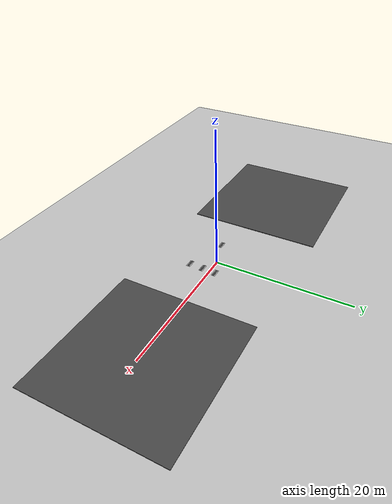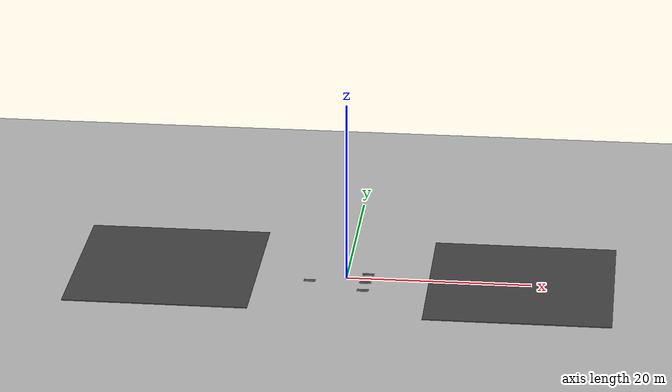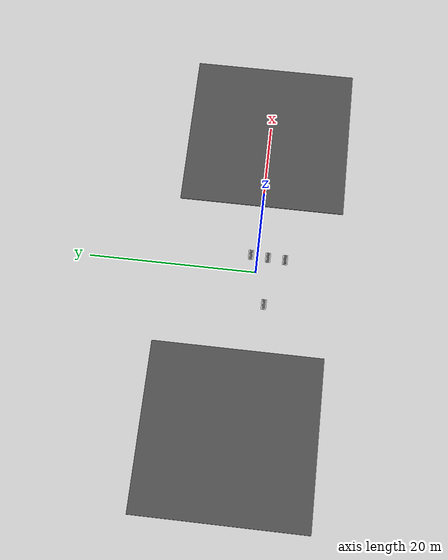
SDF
<sdf version="1.6">
 <world name="default">
  <model name="ground_plane">
   <static>1</static>
   <link name="link">
    <collision name="collision">
     <geometry><plane><normal>0 0 1</normal><size>100 100</size></plane></geometry>
     <surface><friction><ode><mu>100</mu><mu2>50</mu2></ode></friction></surface>
    </collision>
    <visual name="visual">
     <cast_shadows>0</cast_shadows>
     <geometry><plane><normal>0 0 1</normal><size>100 100</size></plane></geometry>
     <material>
      <script><uri>file://media/materials/scripts/gazebo.material</uri><name>Gazebo/Grey</name></script>
     </material>
    </visual>
   </link>
  </model>
  <model name="asphalt_plane">
   <static>1</static>
   <link name="link">
    <collision name="collision"><geometry><box><size>20 20 0.1</size></box></geometry></collision>
    <visual name="visual">
     <cast_shadows>0</cast_shadows>
     <geometry><box><size>20 20 0.1</size></box></geometry>
     <material>
      <script>
       <uri>model://asphalt_plane/materials/scripts</uri>
       <uri>model://asphalt_plane/materials/textures</uri>
       <name>vrc/asphalt</name>
      </script>
     </material>
    </visual>
   </link>
   <pose>18.9407 0.223118 0 0 -0 0</pose>
  </model>
  <model name="asphalt_plane_clone_0">
   <static>1</static>
   <link name="link">
    <collision name="collision"><geometry><box><size>20 20 0.1</size></box></geometry></collision>
    <visual name="visual">
     <cast_shadows>0</cast_shadows>
     <geometry><box><size>20 20 0.1</size></box></geometry>
     <material>
      <script>
       <uri>model://asphalt_plane/materials/scripts</uri>
       <uri>model://asphalt_plane/materials/textures</uri>
       <name>vrc/asphalt</name>
      </script>
     </material>
    </visual>
   </link>
   <pose>-19.8038 1.18618 0 0 -0 0</pose>
  </model>
  <model name="frc2016_roughterrain_clone_1">
   <static>1</static>
   <link name="link">
    <visual name="platform">
     <pose>0 0 0.08269 0 -0 0</pose>
     <geometry><box><size>1.27 0.5969 0.003175</size></box></geometry>
    </visual>
    <collision name="platform">
     <pose>0 0 0.08269 0 -0 0</pose>
     <geometry><box><size>1.27 0.5969 0.003175</size></box></geometry>
    </collision>
    <visual name="row1_block1_sm">
     <pose>0.51435 0.1143 0.09698 0 -0 0</pose>
     <geometry><box><size>0.0762 0.0762 0.0254</size></box></geometry>
    </visual>
    <collision name="row1_block1_sm">
     <pose>0.51435 0.1143 0.09698 0 -0 0</pose>
     <geometry><box><size>0.0762 0.0762 0.0254</size></box></geometry>
    </collision>
    <visual name="row1_block2_lg">
     <pose>0.40005 0.1143 0.12238 0 -0 0</pose>
     <geometry><box><size>0.0762 0.0762 0.0762</size></box></geometry>
    </visual>
    <collision name="row1_block2_lg">
     <pose>0.40005 0.1143 0.12238 0 -0 0</pose>
     <geometry><box><size>0.0762 0.0762 0.0762</size></box></geometry>
    </collision>
    <visual name="row1_block3_md">
     <pose>0.28575 0.1143 0.10968 0 -0 0</pose>
     <geometry><box><size>0.0762 0.0762 0.0508</size></box></geometry>
    </visual>
    <collision name="row1_block3_md">
     <pose>0.28575 0.1143 0.10968 0 -0 0</pose>
     <geometry><box><size>0.0762 0.0762 0.0508</size></box></geometry>
    </collision>
    <visual name="row1_block4_sm">
     <pose>0.17145 0.1143 0.09698 0 -0 0</pose>
     <geometry><box><size>0.0762 0.0762 0.0254</size></box></geometry>
    </visual>
    <collision name="row1_block4_sm">
     <pose>0.17145 0.1143 0.09698 0 -0 0</pose>
     <geometry><box><size>0.0762 0.0762 0.0254</size></box></geometry>
    </collision>
    <visual name="row1_block5_md">
     <pose>0.05715 0.1143 0.10968 0 -0 0</pose>
     <geometry><box><size>0.0762 0.0762 0.0508</size></box></geometry>
    </visual>
    <collision name="row1_block5_md">
     <pose>0.05715 0.1143 0.10968 0 -0 0</pose>
     <geometry><box><size>0.0762 0.0762 0.0508</size></box></geometry>
    </collision>
    <visual name="row1_block6_lg">
     <pose>-0.05715 0.1143 0.12238 0 -0 0</pose>
     <geometry><box><size>0.0762 0.0762 0.0762</size></box></geometry>
    </visual>
    <collision name="row1_block6_lg">
     <pose>-0.05715 0.1143 0.12238 0 -0 0</pose>
     <geometry><box><size>0.0762 0.0762 0.0762</size></box></geometry>
    </collision>
    <visual name="row1_block7_sm">
     <pose>-0.17145 0.1143 0.09698 0 -0 0</pose>
     <geometry><box><size>0.0762 0.0762 0.0254</size></box></geometry>
    </visual>
    <collision name="row1_block7_sm">
     <pose>-0.17145 0.1143 0.09698 0 -0 0</pose>
     <geometry><box><size>0.0762 0.0762 0.0254</size></box></geometry>
    </collision>
    <visual name="row1_block8_sm">
     <pose>-0.28575 0.1143 0.09698 0 -0 0</pose>
     <geometry><box><size>0.0762 0.0762 0.0254</size></box></geometry>
    </visual>
    <collision name="row1_block8_sm">
     <pose>-0.28575 0.1143 0.09698 0 -0 0</pose>
     <geometry><box><size>0.0762 0.0762 0.0254</size></box></geometry>
    </collision>
    <visual name="row1_block9_md">
     <pose>-0.40005 0.1143 0.10968 0 -0 0</pose>
     <geometry><box><size>0.0762 0.0762 0.0508</size></box></geometry>
    </visual>
    <collision name="row1_block9_md">
     <pose>-0.40005 0.1143 0.10968 0 -0 0</pose>
     <geometry><box><size>0.0762 0.0762 0.0508</size></box></geometry>
    </collision>
    <visual name="row1_block10_lg">
     <pose>-0.51435 0.1143 0.12238 0 -0 0</pose>
     <geometry><box><size>0.0762 0.0762 0.0762</size></box></geometry>
    </visual>
    <collision name="row1_block10_lg">
     <pose>-0.51435 0.1143 0.12238 0 -0 0</pose>
     <geometry><box><size>0.0762 0.0762 0.0762</size></box></geometry>
    </collision>
    <visual name="row2_block1_md">
     <pose>0.5715 0 0.10968 0 -0 0</pose>
     <geometry><box><size>0.0762 0.0762 0.0508</size></box></geometry>
    </visual>
    <collision name="row2_block1_md">
     <pose>0.5715 0 0.10968 0 -0 0</pose>
     <geometry><box><size>0.0762 0.0762 0.0508</size></box></geometry>
    </collision>
    <visual name="row2_block2_sm">
     <pose>0.4572 0 0.09698 0 -0 0</pose>
     <geometry><box><size>0.0762 0.0762 0.0254</size></box></geometry>
    </visual>
    <collision name="row2_block2_sm">
     <pose>0.4572 0 0.09698 0 -0 0</pose>
     <geometry><box><size>0.0762 0.0762 0.0254</size></box></geometry>
    </collision>
    <visual name="row2_block3_lg">
     <pose>0.3429 0 0.12238 0 -0 0</pose>
     <geometry><box><size>0.0762 0.0762 0.0762</size></box></geometry>
    </visual>
    <collision name="row2_block3_lg">
     <pose>0.3429 0 0.12238 0 -0 0</pose>
     <geometry><box><size>0.0762 0.0762 0.0762</size></box></geometry>
    </collision>
    <visual name="row2_block4_md">
     <pose>0.2286 0 0.10968 0 -0 0</pose>
     <geometry><box><size>0.0762 0.0762 0.0508</size></box></geometry>
    </visual>
    <collision name="row2_block4_md">
     <pose>0.2286 0 0.10968 0 -0 0</pose>
     <geometry><box><size>0.0762 0.0762 0.0508</size></box></geometry>
    </collision>
    <visual name="row2_block5_lg">
     <pose>0.1143 0 0.12238 0 -0 0</pose>
     <geometry><box><size>0.0762 0.0762 0.0762</size></box></geometry>
    </visual>
    <collision name="row2_block5_lg">
     <pose>0.1143 0 0.12238 0 -0 0</pose>
     <geometry><box><size>0.0762 0.0762 0.0762</size></box></geometry>
    </collision>
    <visual name="row2_block6_sm">
     <pose>0 0 0.09698 0 -0 0</pose>
     <geometry><box><size>0.0762 0.0762 0.0254</size></box></geometry>
    </visual>
    <collision name="row2_block6_sm">
     <pose>0 0 0.09698 0 -0 0</pose>
     <geometry><box><size>0.0762 0.0762 0.0254</size></box></geometry>
    </collision>
    <visual name="row2_block7_md">
     <pose>-0.1143 0 0.10968 0 -0 0</pose>
     <geometry><box><size>0.0762 0.0762 0.0508</size></box></geometry>
    </visual>
    <collision name="row2_block7_md">
     <pose>-0.1143 0 0.10968 0 -0 0</pose>
     <geometry><box><size>0.0762 0.0762 0.0508</size></box></geometry>
    </collision>
    <visual name="row2_block8_lg">
     <pose>-0.2286 0 0.12238 0 -0 0</pose>
     <geometry><box><size>0.0762 0.0762 0.0762</size></box></geometry>
    </visual>
    <collision name="row2_block8_lg">
     <pose>-0.2286 0 0.12238 0 -0 0</pose>
     <geometry><box><size>0.0762 0.0762 0.0762</size></box></geometry>
    </collision>
    <visual name="row2_block9_sm">
     <pose>-0.3429 0 0.09698 0 -0 0</pose>
     <geometry><box><size>0.0762 0.0762 0.0254</size></box></geometry>
    </visual>
    <collision name="row2_block9_sm">
     <pose>-0.3429 0 0.09698 0 -0 0</pose>
     <geometry><box><size>0.0762 0.0762 0.0254</size></box></geometry>
    </collision>
    <visual name="row2_block10_lg">
     <pose>-0.4572 0 0.12238 0 -0 0</pose>
     <geometry><box><size>0.0762 0.0762 0.0762</size></box></geometry>
    </visual>
    <collision name="row2_block10_lg">
     <pose>-0.4572 0 0.12238 0 -0 0</pose>
     <geometry><box><size>0.0762 0.0762 0.0762</size></box></geometry>
    </collision>
    <visual name="row2_block11_md">
     <pose>-0.5715 0 0.10968 0 -0 0</pose>
     <geometry><box><size>0.0762 0.0762 0.0508</size></box></geometry>
    </visual>
    <collision name="row2_block11_md">
     <pose>-0.5715 0 0.10968 0 -0 0</pose>
     <geometry><box><size>0.0762 0.0762 0.0508</size></box></geometry>
    </collision>
    <visual name="row3_block1_lg">
     <pose>0.51435 -0.1143 0.12238 0 -0 0</pose>
     <geometry><box><size>0.0762 0.0762 0.0762</size></box></geometry>
    </visual>
    <collision name="row3_block1_lg">
     <pose>0.51435 -0.1143 0.12238 0 -0 0</pose>
     <geometry><box><size>0.0762 0.0762 0.0762</size></box></geometry>
    </collision>
    <visual name="row3_block2_md">
     <pose>0.40005 -0.1143 0.10968 0 -0 0</pose>
     <geometry><box><size>0.0762 0.0762 0.0508</size></box></geometry>
    </visual>
    <collision name="row3_block2_md">
     <pose>0.40005 -0.1143 0.10968 0 -0 0</pose>
     <geometry><box><size>0.0762 0.0762 0.0508</size></box></geometry>
    </collision>
    <visual name="row3_block3_lg">
     <pose>0.28575 -0.1143 0.12238 0 -0 0</pose>
     <geometry><box><size>0.0762 0.0762 0.0762</size></box></geometry>
    </visual>
    <collision name="row3_block3_lg">
     <pose>0.28575 -0.1143 0.12238 0 -0 0</pose>
     <geometry><box><size>0.0762 0.0762 0.0762</size></box></geometry>
    </collision>
    <visual name="row3_block4_sm">
     <pose>0.17145 -0.1143 0.09698 0 -0 0</pose>
     <geometry><box><size>0.0762 0.0762 0.0254</size></box></geometry>
    </visual>
    <collision name="row3_block4_sm">
     <pose>0.17145 -0.1143 0.09698 0 -0 0</pose>
     <geometry><box><size>0.0762 0.0762 0.0254</size></box></geometry>
    </collision>
    <visual name="row3_block5_md">
     <pose>0.05715 -0.1143 0.10968 0 -0 0</pose>
     <geometry><box><size>0.0762 0.0762 0.0508</size></box></geometry>
    </visual>
    <collision name="row3_block5_md">
     <pose>0.05715 -0.1143 0.10968 0 -0 0</pose>
     <geometry><box><size>0.0762 0.0762 0.0508</size></box></geometry>
    </collision>
    <visual name="row3_block6_md">
     <pose>-0.05715 -0.1143 0.10968 0 -0 0</pose>
     <geometry><box><size>0.0762 0.0762 0.0508</size></box></geometry>
    </visual>
    <collision name="row3_block6_md">
     <pose>-0.05715 -0.1143 0.10968 0 -0 0</pose>
     <geometry><box><size>0.0762 0.0762 0.0508</size></box></geometry>
    </collision>
    <visual name="row3_block7_lg">
     <pose>-0.17145 -0.1143 0.12238 0 -0 0</pose>
     <geometry><box><size>0.0762 0.0762 0.0762</size></box></geometry>
    </visual>
    <collision name="row3_block7_lg">
     <pose>-0.17145 -0.1143 0.12238 0 -0 0</pose>
     <geometry><box><size>0.0762 0.0762 0.0762</size></box></geometry>
    </collision>
    <visual name="row3_block8_sm">
     <pose>-0.28575 -0.1143 0.09698 0 -0 0</pose>
     <geometry><box><size>0.0762 0.0762 0.0254</size></box></geometry>
    </visual>
    <collision name="row3_block8_sm">
     <pose>-0.28575 -0.1143 0.09698 0 -0 0</pose>
     <geometry><box><size>0.0762 0.0762 0.0254</size></box></geometry>
    </collision>
    <visual name="row3_block9_md">
     <pose>-0.40005 -0.1143 0.10968 0 -0 0</pose>
     <geometry><box><size>0.0762 0.0762 0.0508</size></box></geometry>
    </visual>
    <collision name="row3_block9_md">
     <pose>-0.40005 -0.1143 0.10968 0 -0 0</pose>
     <geometry><box><size>0.0762 0.0762 0.0508</size></box></geometry>
    </collision>
    <visual name="row3_block10_sm">
     <pose>-0.51435 -0.1143 0.09698 0 -0 0</pose>
     <geometry><box><size>0.0762 0.0762 0.0254</size></box></geometry>
    </visual>
    <collision name="row3_block10_sm">
     <pose>-0.51435 -0.1143 0.09698 0 -0 0</pose>
     <geometry><box><size>0.0762 0.0762 0.0254</size></box></geometry>
    </collision>
   </link>
   <pose>2.04177 -3.26936 0 0 -0 0</pose>
  </model>
  <model name="frc2016_roughterrain_clone_2">
   <static>1</static>
   <link name="link">
    <visual name="platform">
     <pose>0 0 0.08269 0 -0 0</pose>
     <geometry><box><size>1.27 0.5969 0.003175</size></box></geometry>
    </visual>
    <collision name="platform">
     <pose>0 0 0.08269 0 -0 0</pose>
     <geometry><box><size>1.27 0.5969 0.003175</size></box></geometry>
    </collision>
    <visual name="row1_block1_sm">
     <pose>0.51435 0.1143 0.09698 0 -0 0</pose>
     <geometry><box><size>0.0762 0.0762 0.0254</size></box></geometry>
    </visual>
    <collision name="row1_block1_sm">
     <pose>0.51435 0.1143 0.09698 0 -0 0</pose>
     <geometry><box><size>0.0762 0.0762 0.0254</size></box></geometry>
    </collision>
    <visual name="row1_block2_lg">
     <pose>0.40005 0.1143 0.12238 0 -0 0</pose>
     <geometry><box><size>0.0762 0.0762 0.0762</size></box></geometry>
    </visual>
    <collision name="row1_block2_lg">
     <pose>0.40005 0.1143 0.12238 0 -0 0</pose>
     <geometry><box><size>0.0762 0.0762 0.0762</size></box></geometry>
    </collision>
    <visual name="row1_block3_md">
     <pose>0.28575 0.1143 0.10968 0 -0 0</pose>
     <geometry><box><size>0.0762 0.0762 0.0508</size></box></geometry>
    </visual>
    <collision name="row1_block3_md">
     <pose>0.28575 0.1143 0.10968 0 -0 0</pose>
     <geometry><box><size>0.0762 0.0762 0.0508</size></box></geometry>
    </collision>
    <visual name="row1_block4_sm">
     <pose>0.17145 0.1143 0.09698 0 -0 0</pose>
     <geometry><box><size>0.0762 0.0762 0.0254</size></box></geometry>
    </visual>
    <collision name="row1_block4_sm">
     <pose>0.17145 0.1143 0.09698 0 -0 0</pose>
     <geometry><box><size>0.0762 0.0762 0.0254</size></box></geometry>
    </collision>
    <visual name="row1_block5_md">
     <pose>0.05715 0.1143 0.10968 0 -0 0</pose>
     <geometry><box><size>0.0762 0.0762 0.0508</size></box></geometry>
    </visual>
    <collision name="row1_block5_md">
     <pose>0.05715 0.1143 0.10968 0 -0 0</pose>
     <geometry><box><size>0.0762 0.0762 0.0508</size></box></geometry>
    </collision>
    <visual name="row1_block6_lg">
     <pose>-0.05715 0.1143 0.12238 0 -0 0</pose>
     <geometry><box><size>0.0762 0.0762 0.0762</size></box></geometry>
    </visual>
    <collision name="row1_block6_lg">
     <pose>-0.05715 0.1143 0.12238 0 -0 0</pose>
     <geometry><box><size>0.0762 0.0762 0.0762</size></box></geometry>
    </collision>
    <visual name="row1_block7_sm">
     <pose>-0.17145 0.1143 0.09698 0 -0 0</pose>
     <geometry><box><size>0.0762 0.0762 0.0254</size></box></geometry>
    </visual>
    <collision name="row1_block7_sm">
     <pose>-0.17145 0.1143 0.09698 0 -0 0</pose>
     <geometry><box><size>0.0762 0.0762 0.0254</size></box></geometry>
    </collision>
    <visual name="row1_block8_sm">
     <pose>-0.28575 0.1143 0.09698 0 -0 0</pose>
     <geometry><box><size>0.0762 0.0762 0.0254</size></box></geometry>
    </visual>
    <collision name="row1_block8_sm">
     <pose>-0.28575 0.1143 0.09698 0 -0 0</pose>
     <geometry><box><size>0.0762 0.0762 0.0254</size></box></geometry>
    </collision>
    <visual name="row1_block9_md">
     <pose>-0.40005 0.1143 0.10968 0 -0 0</pose>
     <geometry><box><size>0.0762 0.0762 0.0508</size></box></geometry>
    </visual>
    <collision name="row1_block9_md">
     <pose>-0.40005 0.1143 0.10968 0 -0 0</pose>
     <geometry><box><size>0.0762 0.0762 0.0508</size></box></geometry>
    </collision>
    <visual name="row1_block10_lg">
     <pose>-0.51435 0.1143 0.12238 0 -0 0</pose>
     <geometry><box><size>0.0762 0.0762 0.0762</size></box></geometry>
    </visual>
    <collision name="row1_block10_lg">
     <pose>-0.51435 0.1143 0.12238 0 -0 0</pose>
     <geometry><box><size>0.0762 0.0762 0.0762</size></box></geometry>
    </collision>
    <visual name="row2_block1_md">
     <pose>0.5715 0 0.10968 0 -0 0</pose>
     <geometry><box><size>0.0762 0.0762 0.0508</size></box></geometry>
    </visual>
    <collision name="row2_block1_md">
     <pose>0.5715 0 0.10968 0 -0 0</pose>
     <geometry><box><size>0.0762 0.0762 0.0508</size></box></geometry>
    </collision>
    <visual name="row2_block2_sm">
     <pose>0.4572 0 0.09698 0 -0 0</pose>
     <geometry><box><size>0.0762 0.0762 0.0254</size></box></geometry>
    </visual>
    <collision name="row2_block2_sm">
     <pose>0.4572 0 0.09698 0 -0 0</pose>
     <geometry><box><size>0.0762 0.0762 0.0254</size></box></geometry>
    </collision>
    <visual name="row2_block3_lg">
     <pose>0.3429 0 0.12238 0 -0 0</pose>
     <geometry><box><size>0.0762 0.0762 0.0762</size></box></geometry>
    </visual>
    <collision name="row2_block3_lg">
     <pose>0.3429 0 0.12238 0 -0 0</pose>
     <geometry><box><size>0.0762 0.0762 0.0762</size></box></geometry>
    </collision>
    <visual name="row2_block4_md">
     <pose>0.2286 0 0.10968 0 -0 0</pose>
     <geometry><box><size>0.0762 0.0762 0.0508</size></box></geometry>
    </visual>
    <collision name="row2_block4_md">
     <pose>0.2286 0 0.10968 0 -0 0</pose>
     <geometry><box><size>0.0762 0.0762 0.0508</size></box></geometry>
    </collision>
    <visual name="row2_block5_lg">
     <pose>0.1143 0 0.12238 0 -0 0</pose>
     <geometry><box><size>0.0762 0.0762 0.0762</size></box></geometry>
    </visual>
    <collision name="row2_block5_lg">
     <pose>0.1143 0 0.12238 0 -0 0</pose>
     <geometry><box><size>0.0762 0.0762 0.0762</size></box></geometry>
    </collision>
    <visual name="row2_block6_sm">
     <pose>0 0 0.09698 0 -0 0</pose>
     <geometry><box><size>0.0762 0.0762 0.0254</size></box></geometry>
    </visual>
    <collision name="row2_block6_sm">
     <pose>0 0 0.09698 0 -0 0</pose>
     <geometry><box><size>0.0762 0.0762 0.0254</size></box></geometry>
    </collision>
    <visual name="row2_block7_md">
     <pose>-0.1143 0 0.10968 0 -0 0</pose>
     <geometry><box><size>0.0762 0.0762 0.0508</size></box></geometry>
    </visual>
    <collision name="row2_block7_md">
     <pose>-0.1143 0 0.10968 0 -0 0</pose>
     <geometry><box><size>0.0762 0.0762 0.0508</size></box></geometry>
    </collision>
    <visual name="row2_block8_lg">
     <pose>-0.2286 0 0.12238 0 -0 0</pose>
     <geometry><box><size>0.0762 0.0762 0.0762</size></box></geometry>
    </visual>
    <collision name="row2_block8_lg">
     <pose>-0.2286 0 0.12238 0 -0 0</pose>
     <geometry><box><size>0.0762 0.0762 0.0762</size></box></geometry>
    </collision>
    <visual name="row2_block9_sm">
     <pose>-0.3429 0 0.09698 0 -0 0</pose>
     <geometry><box><size>0.0762 0.0762 0.0254</size></box></geometry>
    </visual>
    <collision name="row2_block9_sm">
     <pose>-0.3429 0 0.09698 0 -0 0</pose>
     <geometry><box><size>0.0762 0.0762 0.0254</size></box></geometry>
    </collision>
    <visual name="row2_block10_lg">
     <pose>-0.4572 0 0.12238 0 -0 0</pose>
     <geometry><box><size>0.0762 0.0762 0.0762</size></box></geometry>
    </visual>
    <collision name="row2_block10_lg">
     <pose>-0.4572 0 0.12238 0 -0 0</pose>
     <geometry><box><size>0.0762 0.0762 0.0762</size></box></geometry>
    </collision>
    <visual name="row2_block11_md">
     <pose>-0.5715 0 0.10968 0 -0 0</pose>
     <geometry><box><size>0.0762 0.0762 0.0508</size></box></geometry>
    </visual>
    <collision name="row2_block11_md">
     <pose>-0.5715 0 0.10968 0 -0 0</pose>
     <geometry><box><size>0.0762 0.0762 0.0508</size></box></geometry>
    </collision>
    <visual name="row3_block1_lg">
     <pose>0.51435 -0.1143 0.12238 0 -0 0</pose>
     <geometry><box><size>0.0762 0.0762 0.0762</size></box></geometry>
    </visual>
    <collision name="row3_block1_lg">
     <pose>0.51435 -0.1143 0.12238 0 -0 0</pose>
     <geometry><box><size>0.0762 0.0762 0.0762</size></box></geometry>
    </collision>
    <visual name="row3_block2_md">
     <pose>0.40005 -0.1143 0.10968 0 -0 0</pose>
     <geometry><box><size>0.0762 0.0762 0.0508</size></box></geometry>
    </visual>
    <collision name="row3_block2_md">
     <pose>0.40005 -0.1143 0.10968 0 -0 0</pose>
     <geometry><box><size>0.0762 0.0762 0.0508</size></box></geometry>
    </collision>
    <visual name="row3_block3_lg">
     <pose>0.28575 -0.1143 0.12238 0 -0 0</pose>
     <geometry><box><size>0.0762 0.0762 0.0762</size></box></geometry>
    </visual>
    <collision name="row3_block3_lg">
     <pose>0.28575 -0.1143 0.12238 0 -0 0</pose>
     <geometry><box><size>0.0762 0.0762 0.0762</size></box></geometry>
    </collision>
    <visual name="row3_block4_sm">
     <pose>0.17145 -0.1143 0.09698 0 -0 0</pose>
     <geometry><box><size>0.0762 0.0762 0.0254</size></box></geometry>
    </visual>
    <collision name="row3_block4_sm">
     <pose>0.17145 -0.1143 0.09698 0 -0 0</pose>
     <geometry><box><size>0.0762 0.0762 0.0254</size></box></geometry>
    </collision>
    <visual name="row3_block5_md">
     <pose>0.05715 -0.1143 0.10968 0 -0 0</pose>
     <geometry><box><size>0.0762 0.0762 0.0508</size></box></geometry>
    </visual>
    <collision name="row3_block5_md">
     <pose>0.05715 -0.1143 0.10968 0 -0 0</pose>
     <geometry><box><size>0.0762 0.0762 0.0508</size></box></geometry>
    </collision>
    <visual name="row3_block6_md">
     <pose>-0.05715 -0.1143 0.10968 0 -0 0</pose>
     <geometry><box><size>0.0762 0.0762 0.0508</size></box></geometry>
    </visual>
    <collision name="row3_block6_md">
     <pose>-0.05715 -0.1143 0.10968 0 -0 0</pose>
     <geometry><box><size>0.0762 0.0762 0.0508</size></box></geometry>
    </collision>
    <visual name="row3_block7_lg">
     <pose>-0.17145 -0.1143 0.12238 0 -0 0</pose>
     <geometry><box><size>0.0762 0.0762 0.0762</size></box></geometry>
    </visual>
    <collision name="row3_block7_lg">
     <pose>-0.17145 -0.1143 0.12238 0 -0 0</pose>
     <geometry><box><size>0.0762 0.0762 0.0762</size></box></geometry>
    </collision>
    <visual name="row3_block8_sm">
     <pose>-0.28575 -0.1143 0.09698 0 -0 0</pose>
     <geometry><box><size>0.0762 0.0762 0.0254</size></box></geometry>
    </visual>
    <collision name="row3_block8_sm">
     <pose>-0.28575 -0.1143 0.09698 0 -0 0</pose>
     <geometry><box><size>0.0762 0.0762 0.0254</size></box></geometry>
    </collision>
    <visual name="row3_block9_md">
     <pose>-0.40005 -0.1143 0.10968 0 -0 0</pose>
     <geometry><box><size>0.0762 0.0762 0.0508</size></box></geometry>
    </visual>
    <collision name="row3_block9_md">
     <pose>-0.40005 -0.1143 0.10968 0 -0 0</pose>
     <geometry><box><size>0.0762 0.0762 0.0508</size></box></geometry>
    </collision>
    <visual name="row3_block10_sm">
     <pose>-0.51435 -0.1143 0.09698 0 -0 0</pose>
     <geometry><box><size>0.0762 0.0762 0.0254</size></box></geometry>
    </visual>
    <collision name="row3_block10_sm">
     <pose>-0.51435 -0.1143 0.09698 0 -0 0</pose>
     <geometry><box><size>0.0762 0.0762 0.0254</size></box></geometry>
    </collision>
   </link>
   <pose>2.11875 -1.2083 0 0 -0 0</pose>
  </model>
  <model name="frc2016_roughterrain_clone_3">
   <static>1</static>
   <link name="link">
    <visual name="platform">
     <pose>0 0 0.08269 0 -0 0</pose>
     <geometry><box><size>1.27 0.5969 0.003175</size></box></geometry>
    </visual>
    <collision name="platform">
     <pose>0 0 0.08269 0 -0 0</pose>
     <geometry><box><size>1.27 0.5969 0.003175</size></box></geometry>
    </collision>
    <visual name="row1_block1_sm">
     <pose>0.51435 0.1143 0.09698 0 -0 0</pose>
     <geometry><box><size>0.0762 0.0762 0.0254</size></box></geometry>
    </visual>
    <collision name="row1_block1_sm">
     <pose>0.51435 0.1143 0.09698 0 -0 0</pose>
     <geometry><box><size>0.0762 0.0762 0.0254</size></box></geometry>
    </collision>
    <visual name="row1_block2_lg">
     <pose>0.40005 0.1143 0.12238 0 -0 0</pose>
     <geometry><box><size>0.0762 0.0762 0.0762</size></box></geometry>
    </visual>
    <collision name="row1_block2_lg">
     <pose>0.40005 0.1143 0.12238 0 -0 0</pose>
     <geometry><box><size>0.0762 0.0762 0.0762</size></box></geometry>
    </collision>
    <visual name="row1_block3_md">
     <pose>0.28575 0.1143 0.10968 0 -0 0</pose>
     <geometry><box><size>0.0762 0.0762 0.0508</size></box></geometry>
    </visual>
    <collision name="row1_block3_md">
     <pose>0.28575 0.1143 0.10968 0 -0 0</pose>
     <geometry><box><size>0.0762 0.0762 0.0508</size></box></geometry>
    </collision>
    <visual name="row1_block4_sm">
     <pose>0.17145 0.1143 0.09698 0 -0 0</pose>
     <geometry><box><size>0.0762 0.0762 0.0254</size></box></geometry>
    </visual>
    <collision name="row1_block4_sm">
     <pose>0.17145 0.1143 0.09698 0 -0 0</pose>
     <geometry><box><size>0.0762 0.0762 0.0254</size></box></geometry>
    </collision>
    <visual name="row1_block5_md">
     <pose>0.05715 0.1143 0.10968 0 -0 0</pose>
     <geometry><box><size>0.0762 0.0762 0.0508</size></box></geometry>
    </visual>
    <collision name="row1_block5_md">
     <pose>0.05715 0.1143 0.10968 0 -0 0</pose>
     <geometry><box><size>0.0762 0.0762 0.0508</size></box></geometry>
    </collision>
    <visual name="row1_block6_lg">
     <pose>-0.05715 0.1143 0.12238 0 -0 0</pose>
     <geometry><box><size>0.0762 0.0762 0.0762</size></box></geometry>
    </visual>
    <collision name="row1_block6_lg">
     <pose>-0.05715 0.1143 0.12238 0 -0 0</pose>
     <geometry><box><size>0.0762 0.0762 0.0762</size></box></geometry>
    </collision>
    <visual name="row1_block7_sm">
     <pose>-0.17145 0.1143 0.09698 0 -0 0</pose>
     <geometry><box><size>0.0762 0.0762 0.0254</size></box></geometry>
    </visual>
    <collision name="row1_block7_sm">
     <pose>-0.17145 0.1143 0.09698 0 -0 0</pose>
     <geometry><box><size>0.0762 0.0762 0.0254</size></box></geometry>
    </collision>
    <visual name="row1_block8_sm">
     <pose>-0.28575 0.1143 0.09698 0 -0 0</pose>
     <geometry><box><size>0.0762 0.0762 0.0254</size></box></geometry>
    </visual>
    <collision name="row1_block8_sm">
     <pose>-0.28575 0.1143 0.09698 0 -0 0</pose>
     <geometry><box><size>0.0762 0.0762 0.0254</size></box></geometry>
    </collision>
    <visual name="row1_block9_md">
     <pose>-0.40005 0.1143 0.10968 0 -0 0</pose>
     <geometry><box><size>0.0762 0.0762 0.0508</size></box></geometry>
    </visual>
    <collision name="row1_block9_md">
     <pose>-0.40005 0.1143 0.10968 0 -0 0</pose>
     <geometry><box><size>0.0762 0.0762 0.0508</size></box></geometry>
    </collision>
    <visual name="row1_block10_lg">
     <pose>-0.51435 0.1143 0.12238 0 -0 0</pose>
     <geometry><box><size>0.0762 0.0762 0.0762</size></box></geometry>
    </visual>
    <collision name="row1_block10_lg">
     <pose>-0.51435 0.1143 0.12238 0 -0 0</pose>
     <geometry><box><size>0.0762 0.0762 0.0762</size></box></geometry>
    </collision>
    <visual name="row2_block1_md">
     <pose>0.5715 0 0.10968 0 -0 0</pose>
     <geometry><box><size>0.0762 0.0762 0.0508</size></box></geometry>
    </visual>
    <collision name="row2_block1_md">
     <pose>0.5715 0 0.10968 0 -0 0</pose>
     <geometry><box><size>0.0762 0.0762 0.0508</size></box></geometry>
    </collision>
    <visual name="row2_block2_sm">
     <pose>0.4572 0 0.09698 0 -0 0</pose>
     <geometry><box><size>0.0762 0.0762 0.0254</size></box></geometry>
    </visual>
    <collision name="row2_block2_sm">
     <pose>0.4572 0 0.09698 0 -0 0</pose>
     <geometry><box><size>0.0762 0.0762 0.0254</size></box></geometry>
    </collision>
    <visual name="row2_block3_lg">
     <pose>0.3429 0 0.12238 0 -0 0</pose>
     <geometry><box><size>0.0762 0.0762 0.0762</size></box></geometry>
    </visual>
    <collision name="row2_block3_lg">
     <pose>0.3429 0 0.12238 0 -0 0</pose>
     <geometry><box><size>0.0762 0.0762 0.0762</size></box></geometry>
    </collision>
    <visual name="row2_block4_md">
     <pose>0.2286 0 0.10968 0 -0 0</pose>
     <geometry><box><size>0.0762 0.0762 0.0508</size></box></geometry>
    </visual>
    <collision name="row2_block4_md">
     <pose>0.2286 0 0.10968 0 -0 0</pose>
     <geometry><box><size>0.0762 0.0762 0.0508</size></box></geometry>
    </collision>
    <visual name="row2_block5_lg">
     <pose>0.1143 0 0.12238 0 -0 0</pose>
     <geometry><box><size>0.0762 0.0762 0.0762</size></box></geometry>
    </visual>
    <collision name="row2_block5_lg">
     <pose>0.1143 0 0.12238 0 -0 0</pose>
     <geometry><box><size>0.0762 0.0762 0.0762</size></box></geometry>
    </collision>
    <visual name="row2_block6_sm">
     <pose>0 0 0.09698 0 -0 0</pose>
     <geometry><box><size>0.0762 0.0762 0.0254</size></box></geometry>
    </visual>
    <collision name="row2_block6_sm">
     <pose>0 0 0.09698 0 -0 0</pose>
     <geometry><box><size>0.0762 0.0762 0.0254</size></box></geometry>
    </collision>
    <visual name="row2_block7_md">
     <pose>-0.1143 0 0.10968 0 -0 0</pose>
     <geometry><box><size>0.0762 0.0762 0.0508</size></box></geometry>
    </visual>
    <collision name="row2_block7_md">
     <pose>-0.1143 0 0.10968 0 -0 0</pose>
     <geometry><box><size>0.0762 0.0762 0.0508</size></box></geometry>
    </collision>
    <visual name="row2_block8_lg">
     <pose>-0.2286 0 0.12238 0 -0 0</pose>
     <geometry><box><size>0.0762 0.0762 0.0762</size></box></geometry>
    </visual>
    <collision name="row2_block8_lg">
     <pose>-0.2286 0 0.12238 0 -0 0</pose>
     <geometry><box><size>0.0762 0.0762 0.0762</size></box></geometry>
    </collision>
    <visual name="row2_block9_sm">
     <pose>-0.3429 0 0.09698 0 -0 0</pose>
     <geometry><box><size>0.0762 0.0762 0.0254</size></box></geometry>
    </visual>
    <collision name="row2_block9_sm">
     <pose>-0.3429 0 0.09698 0 -0 0</pose>
     <geometry><box><size>0.0762 0.0762 0.0254</size></box></geometry>
    </collision>
    <visual name="row2_block10_lg">
     <pose>-0.4572 0 0.12238 0 -0 0</pose>
     <geometry><box><size>0.0762 0.0762 0.0762</size></box></geometry>
    </visual>
    <collision name="row2_block10_lg">
     <pose>-0.4572 0 0.12238 0 -0 0</pose>
     <geometry><box><size>0.0762 0.0762 0.0762</size></box></geometry>
    </collision>
    <visual name="row2_block11_md">
     <pose>-0.5715 0 0.10968 0 -0 0</pose>
     <geometry><box><size>0.0762 0.0762 0.0508</size></box></geometry>
    </visual>
    <collision name="row2_block11_md">
     <pose>-0.5715 0 0.10968 0 -0 0</pose>
     <geometry><box><size>0.0762 0.0762 0.0508</size></box></geometry>
    </collision>
    <visual name="row3_block1_lg">
     <pose>0.51435 -0.1143 0.12238 0 -0 0</pose>
     <geometry><box><size>0.0762 0.0762 0.0762</size></box></geometry>
    </visual>
    <collision name="row3_block1_lg">
     <pose>0.51435 -0.1143 0.12238 0 -0 0</pose>
     <geometry><box><size>0.0762 0.0762 0.0762</size></box></geometry>
    </collision>
    <visual name="row3_block2_md">
     <pose>0.40005 -0.1143 0.10968 0 -0 0</pose>
     <geometry><box><size>0.0762 0.0762 0.0508</size></box></geometry>
    </visual>
    <collision name="row3_block2_md">
     <pose>0.40005 -0.1143 0.10968 0 -0 0</pose>
     <geometry><box><size>0.0762 0.0762 0.0508</size></box></geometry>
    </collision>
    <visual name="row3_block3_lg">
     <pose>0.28575 -0.1143 0.12238 0 -0 0</pose>
     <geometry><box><size>0.0762 0.0762 0.0762</size></box></geometry>
    </visual>
    <collision name="row3_block3_lg">
     <pose>0.28575 -0.1143 0.12238 0 -0 0</pose>
     <geometry><box><size>0.0762 0.0762 0.0762</size></box></geometry>
    </collision>
    <visual name="row3_block4_sm">
     <pose>0.17145 -0.1143 0.09698 0 -0 0</pose>
     <geometry><box><size>0.0762 0.0762 0.0254</size></box></geometry>
    </visual>
    <collision name="row3_block4_sm">
     <pose>0.17145 -0.1143 0.09698 0 -0 0</pose>
     <geometry><box><size>0.0762 0.0762 0.0254</size></box></geometry>
    </collision>
    <visual name="row3_block5_md">
     <pose>0.05715 -0.1143 0.10968 0 -0 0</pose>
     <geometry><box><size>0.0762 0.0762 0.0508</size></box></geometry>
    </visual>
    <collision name="row3_block5_md">
     <pose>0.05715 -0.1143 0.10968 0 -0 0</pose>
     <geometry><box><size>0.0762 0.0762 0.0508</size></box></geometry>
    </collision>
    <visual name="row3_block6_md">
     <pose>-0.05715 -0.1143 0.10968 0 -0 0</pose>
     <geometry><box><size>0.0762 0.0762 0.0508</size></box></geometry>
    </visual>
    <collision name="row3_block6_md">
     <pose>-0.05715 -0.1143 0.10968 0 -0 0</pose>
     <geometry><box><size>0.0762 0.0762 0.0508</size></box></geometry>
    </collision>
    <visual name="row3_block7_lg">
     <pose>-0.17145 -0.1143 0.12238 0 -0 0</pose>
     <geometry><box><size>0.0762 0.0762 0.0762</size></box></geometry>
    </visual>
    <collision name="row3_block7_lg">
     <pose>-0.17145 -0.1143 0.12238 0 -0 0</pose>
     <geometry><box><size>0.0762 0.0762 0.0762</size></box></geometry>
    </collision>
    <visual name="row3_block8_sm">
     <pose>-0.28575 -0.1143 0.09698 0 -0 0</pose>
     <geometry><box><size>0.0762 0.0762 0.0254</size></box></geometry>
    </visual>
    <collision name="row3_block8_sm">
     <pose>-0.28575 -0.1143 0.09698 0 -0 0</pose>
     <geometry><box><size>0.0762 0.0762 0.0254</size></box></geometry>
    </collision>
    <visual name="row3_block9_md">
     <pose>-0.40005 -0.1143 0.10968 0 -0 0</pose>
     <geometry><box><size>0.0762 0.0762 0.0508</size></box></geometry>
    </visual>
    <collision name="row3_block9_md">
     <pose>-0.40005 -0.1143 0.10968 0 -0 0</pose>
     <geometry><box><size>0.0762 0.0762 0.0508</size></box></geometry>
    </collision>
    <visual name="row3_block10_sm">
     <pose>-0.51435 -0.1143 0.09698 0 -0 0</pose>
     <geometry><box><size>0.0762 0.0762 0.0254</size></box></geometry>
    </visual>
    <collision name="row3_block10_sm">
     <pose>-0.51435 -0.1143 0.09698 0 -0 0</pose>
     <geometry><box><size>0.0762 0.0762 0.0254</size></box></geometry>
    </collision>
   </link>
   <pose>2.27371 0.858018 0 0 -0 0</pose>
  </model>
  <model name="frc2016_roughterrain_clone_6">
   <static>1</static>
   <link name="link">
    <visual name="platform">
     <pose>0 0 0.08269 0 -0 0</pose>
     <geometry><box><size>1.27 0.5969 0.003175</size></box></geometry>
    </visual>
    <collision name="platform">
     <pose>0 0 0.08269 0 -0 0</pose>
     <geometry><box><size>1.27 0.5969 0.003175</size></box></geometry>
    </collision>
    <visual name="row1_block1_sm">
     <pose>0.51435 0.1143 0.09698 0 -0 0</pose>
     <geometry><box><size>0.0762 0.0762 0.0254</size></box></geometry>
    </visual>
    <collision name="row1_block1_sm">
     <pose>0.51435 0.1143 0.09698 0 -0 0</pose>
     <geometry><box><size>0.0762 0.0762 0.0254</size></box></geometry>
    </collision>
    <visual name="row1_block2_lg">
     <pose>0.40005 0.1143 0.12238 0 -0 0</pose>
     <geometry><box><size>0.0762 0.0762 0.0762</size></box></geometry>
    </visual>
    <collision name="row1_block2_lg">
     <pose>0.40005 0.1143 0.12238 0 -0 0</pose>
     <geometry><box><size>0.0762 0.0762 0.0762</size></box></geometry>
    </collision>
    <visual name="row1_block3_md">
     <pose>0.28575 0.1143 0.10968 0 -0 0</pose>
     <geometry><box><size>0.0762 0.0762 0.0508</size></box></geometry>
    </visual>
    <collision name="row1_block3_md">
     <pose>0.28575 0.1143 0.10968 0 -0 0</pose>
     <geometry><box><size>0.0762 0.0762 0.0508</size></box></geometry>
    </collision>
    <visual name="row1_block4_sm">
     <pose>0.17145 0.1143 0.09698 0 -0 0</pose>
     <geometry><box><size>0.0762 0.0762 0.0254</size></box></geometry>
    </visual>
    <collision name="row1_block4_sm">
     <pose>0.17145 0.1143 0.09698 0 -0 0</pose>
     <geometry><box><size>0.0762 0.0762 0.0254</size></box></geometry>
    </collision>
    <visual name="row1_block5_md">
     <pose>0.05715 0.1143 0.10968 0 -0 0</pose>
     <geometry><box><size>0.0762 0.0762 0.0508</size></box></geometry>
    </visual>
    <collision name="row1_block5_md">
     <pose>0.05715 0.1143 0.10968 0 -0 0</pose>
     <geometry><box><size>0.0762 0.0762 0.0508</size></box></geometry>
    </collision>
    <visual name="row1_block6_lg">
     <pose>-0.05715 0.1143 0.12238 0 -0 0</pose>
     <geometry><box><size>0.0762 0.0762 0.0762</size></box></geometry>
    </visual>
    <collision name="row1_block6_lg">
     <pose>-0.05715 0.1143 0.12238 0 -0 0</pose>
     <geometry><box><size>0.0762 0.0762 0.0762</size></box></geometry>
    </collision>
    <visual name="row1_block7_sm">
     <pose>-0.17145 0.1143 0.09698 0 -0 0</pose>
     <geometry><box><size>0.0762 0.0762 0.0254</size></box></geometry>
    </visual>
    <collision name="row1_block7_sm">
     <pose>-0.17145 0.1143 0.09698 0 -0 0</pose>
     <geometry><box><size>0.0762 0.0762 0.0254</size></box></geometry>
    </collision>
    <visual name="row1_block8_sm">
     <pose>-0.28575 0.1143 0.09698 0 -0 0</pose>
     <geometry><box><size>0.0762 0.0762 0.0254</size></box></geometry>
    </visual>
    <collision name="row1_block8_sm">
     <pose>-0.28575 0.1143 0.09698 0 -0 0</pose>
     <geometry><box><size>0.0762 0.0762 0.0254</size></box></geometry>
    </collision>
    <visual name="row1_block9_md">
     <pose>-0.40005 0.1143 0.10968 0 -0 0</pose>
     <geometry><box><size>0.0762 0.0762 0.0508</size></box></geometry>
    </visual>
    <collision name="row1_block9_md">
     <pose>-0.40005 0.1143 0.10968 0 -0 0</pose>
     <geometry><box><size>0.0762 0.0762 0.0508</size></box></geometry>
    </collision>
    <visual name="row1_block10_lg">
     <pose>-0.51435 0.1143 0.12238 0 -0 0</pose>
     <geometry><box><size>0.0762 0.0762 0.0762</size></box></geometry>
    </visual>
    <collision name="row1_block10_lg">
     <pose>-0.51435 0.1143 0.12238 0 -0 0</pose>
     <geometry><box><size>0.0762 0.0762 0.0762</size></box></geometry>
    </collision>
    <visual name="row2_block1_md">
     <pose>0.5715 0 0.10968 0 -0 0</pose>
     <geometry><box><size>0.0762 0.0762 0.0508</size></box></geometry>
    </visual>
    <collision name="row2_block1_md">
     <pose>0.5715 0 0.10968 0 -0 0</pose>
     <geometry><box><size>0.0762 0.0762 0.0508</size></box></geometry>
    </collision>
    <visual name="row2_block2_sm">
     <pose>0.4572 0 0.09698 0 -0 0</pose>
     <geometry><box><size>0.0762 0.0762 0.0254</size></box></geometry>
    </visual>
    <collision name="row2_block2_sm">
     <pose>0.4572 0 0.09698 0 -0 0</pose>
     <geometry><box><size>0.0762 0.0762 0.0254</size></box></geometry>
    </collision>
    <visual name="row2_block3_lg">
     <pose>0.3429 0 0.12238 0 -0 0</pose>
     <geometry><box><size>0.0762 0.0762 0.0762</size></box></geometry>
    </visual>
    <collision name="row2_block3_lg">
     <pose>0.3429 0 0.12238 0 -0 0</pose>
     <geometry><box><size>0.0762 0.0762 0.0762</size></box></geometry>
    </collision>
    <visual name="row2_block4_md">
     <pose>0.2286 0 0.10968 0 -0 0</pose>
     <geometry><box><size>0.0762 0.0762 0.0508</size></box></geometry>
    </visual>
    <collision name="row2_block4_md">
     <pose>0.2286 0 0.10968 0 -0 0</pose>
     <geometry><box><size>0.0762 0.0762 0.0508</size></box></geometry>
    </collision>
    <visual name="row2_block5_lg">
     <pose>0.1143 0 0.12238 0 -0 0</pose>
     <geometry><box><size>0.0762 0.0762 0.0762</size></box></geometry>
    </visual>
    <collision name="row2_block5_lg">
     <pose>0.1143 0 0.12238 0 -0 0</pose>
     <geometry><box><size>0.0762 0.0762 0.0762</size></box></geometry>
    </collision>
    <visual name="row2_block6_sm">
     <pose>0 0 0.09698 0 -0 0</pose>
     <geometry><box><size>0.0762 0.0762 0.0254</size></box></geometry>
    </visual>
    <collision name="row2_block6_sm">
     <pose>0 0 0.09698 0 -0 0</pose>
     <geometry><box><size>0.0762 0.0762 0.0254</size></box></geometry>
    </collision>
    <visual name="row2_block7_md">
     <pose>-0.1143 0 0.10968 0 -0 0</pose>
     <geometry><box><size>0.0762 0.0762 0.0508</size></box></geometry>
    </visual>
    <collision name="row2_block7_md">
     <pose>-0.1143 0 0.10968 0 -0 0</pose>
     <geometry><box><size>0.0762 0.0762 0.0508</size></box></geometry>
    </collision>
    <visual name="row2_block8_lg">
     <pose>-0.2286 0 0.12238 0 -0 0</pose>
     <geometry><box><size>0.0762 0.0762 0.0762</size></box></geometry>
    </visual>
    <collision name="row2_block8_lg">
     <pose>-0.2286 0 0.12238 0 -0 0</pose>
     <geometry><box><size>0.0762 0.0762 0.0762</size></box></geometry>
    </collision>
    <visual name="row2_block9_sm">
     <pose>-0.3429 0 0.09698 0 -0 0</pose>
     <geometry><box><size>0.0762 0.0762 0.0254</size></box></geometry>
    </visual>
    <collision name="row2_block9_sm">
     <pose>-0.3429 0 0.09698 0 -0 0</pose>
     <geometry><box><size>0.0762 0.0762 0.0254</size></box></geometry>
    </collision>
    <visual name="row2_block10_lg">
     <pose>-0.4572 0 0.12238 0 -0 0</pose>
     <geometry><box><size>0.0762 0.0762 0.0762</size></box></geometry>
    </visual>
    <collision name="row2_block10_lg">
     <pose>-0.4572 0 0.12238 0 -0 0</pose>
     <geometry><box><size>0.0762 0.0762 0.0762</size></box></geometry>
    </collision>
    <visual name="row2_block11_md">
     <pose>-0.5715 0 0.10968 0 -0 0</pose>
     <geometry><box><size>0.0762 0.0762 0.0508</size></box></geometry>
    </visual>
    <collision name="row2_block11_md">
     <pose>-0.5715 0 0.10968 0 -0 0</pose>
     <geometry><box><size>0.0762 0.0762 0.0508</size></box></geometry>
    </collision>
    <visual name="row3_block1_lg">
     <pose>0.51435 -0.1143 0.12238 0 -0 0</pose>
     <geometry><box><size>0.0762 0.0762 0.0762</size></box></geometry>
    </visual>
    <collision name="row3_block1_lg">
     <pose>0.51435 -0.1143 0.12238 0 -0 0</pose>
     <geometry><box><size>0.0762 0.0762 0.0762</size></box></geometry>
    </collision>
    <visual name="row3_block2_md">
     <pose>0.40005 -0.1143 0.10968 0 -0 0</pose>
     <geometry><box><size>0.0762 0.0762 0.0508</size></box></geometry>
    </visual>
    <collision name="row3_block2_md">
     <pose>0.40005 -0.1143 0.10968 0 -0 0</pose>
     <geometry><box><size>0.0762 0.0762 0.0508</size></box></geometry>
    </collision>
    <visual name="row3_block3_lg">
     <pose>0.28575 -0.1143 0.12238 0 -0 0</pose>
     <geometry><box><size>0.0762 0.0762 0.0762</size></box></geometry>
    </visual>
    <collision name="row3_block3_lg">
     <pose>0.28575 -0.1143 0.12238 0 -0 0</pose>
     <geometry><box><size>0.0762 0.0762 0.0762</size></box></geometry>
    </collision>
    <visual name="row3_block4_sm">
     <pose>0.17145 -0.1143 0.09698 0 -0 0</pose>
     <geometry><box><size>0.0762 0.0762 0.0254</size></box></geometry>
    </visual>
    <collision name="row3_block4_sm">
     <pose>0.17145 -0.1143 0.09698 0 -0 0</pose>
     <geometry><box><size>0.0762 0.0762 0.0254</size></box></geometry>
    </collision>
    <visual name="row3_block5_md">
     <pose>0.05715 -0.1143 0.10968 0 -0 0</pose>
     <geometry><box><size>0.0762 0.0762 0.0508</size></box></geometry>
    </visual>
    <collision name="row3_block5_md">
     <pose>0.05715 -0.1143 0.10968 0 -0 0</pose>
     <geometry><box><size>0.0762 0.0762 0.0508</size></box></geometry>
    </collision>
    <visual name="row3_block6_md">
     <pose>-0.05715 -0.1143 0.10968 0 -0 0</pose>
     <geometry><box><size>0.0762 0.0762 0.0508</size></box></geometry>
    </visual>
    <collision name="row3_block6_md">
     <pose>-0.05715 -0.1143 0.10968 0 -0 0</pose>
     <geometry><box><size>0.0762 0.0762 0.0508</size></box></geometry>
    </collision>
    <visual name="row3_block7_lg">
     <pose>-0.17145 -0.1143 0.12238 0 -0 0</pose>
     <geometry><box><size>0.0762 0.0762 0.0762</size></box></geometry>
    </visual>
    <collision name="row3_block7_lg">
     <pose>-0.17145 -0.1143 0.12238 0 -0 0</pose>
     <geometry><box><size>0.0762 0.0762 0.0762</size></box></geometry>
    </collision>
    <visual name="row3_block8_sm">
     <pose>-0.28575 -0.1143 0.09698 0 -0 0</pose>
     <geometry><box><size>0.0762 0.0762 0.0254</size></box></geometry>
    </visual>
    <collision name="row3_block8_sm">
     <pose>-0.28575 -0.1143 0.09698 0 -0 0</pose>
     <geometry><box><size>0.0762 0.0762 0.0254</size></box></geometry>
    </collision>
    <visual name="row3_block9_md">
     <pose>-0.40005 -0.1143 0.10968 0 -0 0</pose>
     <geometry><box><size>0.0762 0.0762 0.0508</size></box></geometry>
    </visual>
    <collision name="row3_block9_md">
     <pose>-0.40005 -0.1143 0.10968 0 -0 0</pose>
     <geometry><box><size>0.0762 0.0762 0.0508</size></box></geometry>
    </collision>
    <visual name="row3_block10_sm">
     <pose>-0.51435 -0.1143 0.09698 0 -0 0</pose>
     <geometry><box><size>0.0762 0.0762 0.0254</size></box></geometry>
    </visual>
    <collision name="row3_block10_sm">
     <pose>-0.51435 -0.1143 0.09698 0 -0 0</pose>
     <geometry><box><size>0.0762 0.0762 0.0254</size></box></geometry>
    </collision>
   </link>
   <pose>-3.92969 -1.27251 0 0 -0 0</pose>
  </model>
 </world>
</sdf>
